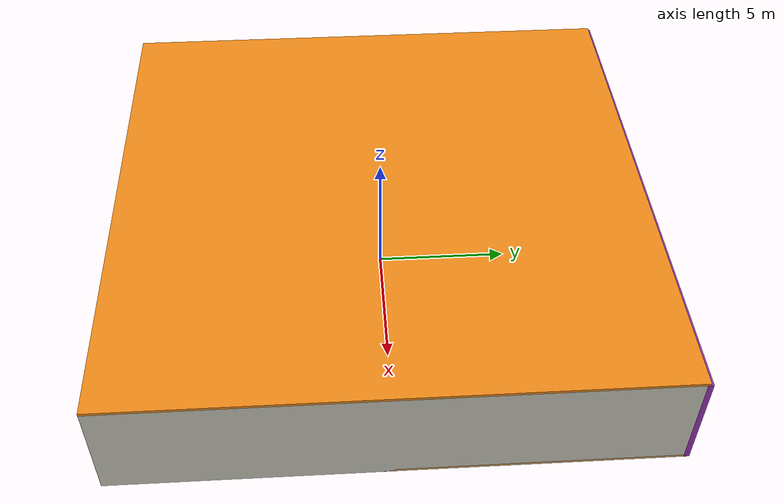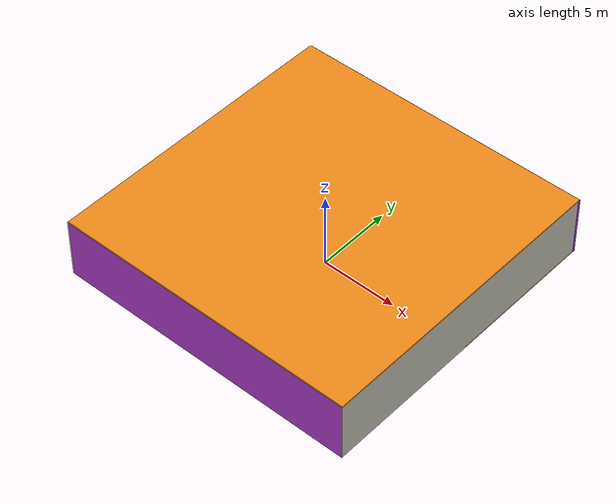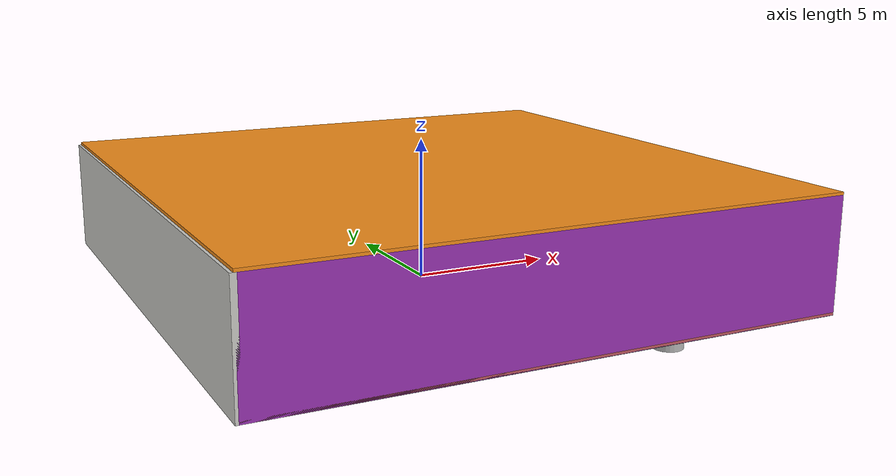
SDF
<sdf version="1.4">
 <world name="default">
  <physics type="ode">
   <max_step_size>0.001</max_step_size>
   <real_time_factor>1</real_time_factor>
   <real_time_update_rate>1000</real_time_update_rate>
   <gravity>0 0 -9.8</gravity>
  </physics>
  <scene><ambient>0.4 0.4 0.4 1</ambient><background>0.7 0.7 0.7 1</background><shadows>1</shadows></scene>
  <model name="Surrounding">
   <static>1</static>
   <link name="Ceiling">
    <collision name="Ceiling_Collision"><geometry><box><size>20 20 0.1</size></box></geometry></collision>
    <visual name="Ceiling_Visual">
     <geometry><box><size>20 20 0.1</size></box></geometry>
     <material>
      <script><uri>file://media/materials/scripts/gazebo.material</uri><name>Gazebo/Orange</name></script>
     </material>
    </visual>
    <pose>0 0 4.05 0 0 0</pose>
   </link>
   <link name="Wall_South">
    <collision name="Wall_South_Collision">
     <geometry><box><size>20 0 4</size></box></geometry>
     <pose>0 0 2 0 -0 0</pose>
    </collision>
    <visual name="Wall_South_Visual">
     <pose>0 0 2 0 -0 0</pose>
     <geometry><box><size>20 0 4</size></box></geometry>
     <material>
      <script><uri>file://media/materials/scripts/gazebo.material</uri><name>Gazebo/PurpleGlow</name></script>
     </material>
    </visual>
    <velocity_decay><linear>0</linear><angular>0</angular></velocity_decay>
    <pose>0 -10 0 0 -0 0</pose>
   </link>
   <link name="Wall_East">
    <collision name="Wall_21_Collision">
     <geometry><box><size>20 0 4</size></box></geometry>
     <pose>0 0 2 0 -0 0</pose>
    </collision>
    <visual name="Wall_21_Visual">
     <pose>0 0 2 0 -0 0</pose>
     <geometry><box><size>20 0 4</size></box></geometry>
     <material>
      <script><uri>file://media/materials/scripts/gazebo.material</uri><name>Gazebo/PaintedWall</name></script>
     </material>
    </visual>
    <velocity_decay><linear>0</linear><angular>0</angular></velocity_decay>
    <pose>10 0 0 0 -0 1.5708</pose>
   </link>
   <link name="Wall_North">
    <collision name="Wall_22_Collision">
     <geometry><box><size>20 0.2 4</size></box></geometry>
     <pose>0 0 2 0 -0 0</pose>
    </collision>
    <visual name="Wall_22_Visual">
     <pose>0 0 2 0 -0 0</pose>
     <geometry><box><size>20 0.2 4</size></box></geometry>
     <material>
      <script><uri>file://media/materials/scripts/gazebo.material</uri><name>Gazebo/PurpleGlow</name></script>
     </material>
    </visual>
    <velocity_decay><linear>0</linear><angular>0</angular></velocity_decay>
    <pose>0 10 0 0 -0 0</pose>
   </link>
   <link name="Wall_West">
    <collision name="Wall_23_Collision">
     <geometry><box><size>20 0.2 4</size></box></geometry>
     <pose>0 0 2 0 -0 0</pose>
    </collision>
    <visual name="Wall_23_Visual">
     <pose>0 0 2 0 -0 0</pose>
     <geometry><box><size>20 0.2 4</size></box></geometry>
     <material>
      <script><uri>file://media/materials/scripts/gazebo.material</uri><name>Gazebo/CeilingTiled</name></script>
     </material>
    </visual>
    <velocity_decay><linear>0</linear><angular>0</angular></velocity_decay>
    <pose>-10 0 0 0 0 -1.5708</pose>
   </link>
   <link name="Ground_link">
    <collision name="collision">
     <pose>0 0 .05 0 -0 0</pose>
     <geometry><box><size>20 20 0.1</size></box></geometry>
    </collision>
    <visual name="visual">
     <pose>0 0 .05 0 -0 0</pose>
     <geometry><box><size>20 20 0.1</size></box></geometry>
     <material>
      <script>
       <uri>file://media/materials/scripts/gazebo.material</uri>
       <name>Gazebo/OrangeTransparent</name>
      </script>
     </material>
    </visual>
   </link>
   <static>1</static>
  </model>
  <spherical_coordinates>
   <surface_model>EARTH_WGS84</surface_model>
   <latitude_deg>0</latitude_deg>
   <longitude_deg>0</longitude_deg>
   <elevation>0</elevation>
   <heading_deg>0</heading_deg>
  </spherical_coordinates>
  <light name="lightball_0" type="diffuse">
   <diffuse>0.8 0.8 0.8 1</diffuse>
   <specular>0.2 0.2 0.2 1</specular>
   <attenuation>
    <range>100</range>
    <constant>0.7</constant>
    <linear>0.01</linear>
    <quadratic>0.001</quadratic>
   </attenuation>
   <direction>-0.5 0.1 -0.9</direction>
   <pose>-2.25920871547 4.18819076571 1.66552940312 0 0 0</pose>
  </light>
  <light name="lightball_1" type="diffuse">
   <diffuse>0.8 0.8 0.8 1</diffuse>
   <specular>0.2 0.2 0.2 1</specular>
   <attenuation>
    <range>100</range>
    <constant>0.7</constant>
    <linear>0.01</linear>
    <quadratic>0.001</quadratic>
   </attenuation>
   <direction>-0.5 0.1 -0.9</direction>
   <pose>2.56124420468 -4.54156549147 1.85215885743 0 0 0</pose>
  </light>
  <light name="lightball_2" type="diffuse">
   <diffuse>0.8 0.8 0.8 1</diffuse>
   <specular>0.2 0.2 0.2 1</specular>
   <attenuation>
    <range>100</range>
    <constant>0.7</constant>
    <linear>0.01</linear>
    <quadratic>0.001</quadratic>
   </attenuation>
   <direction>-0.5 0.1 -0.9</direction>
   <pose>-9.17542648159 -4.90286760538 3.73146851039 0 0 0</pose>
  </light>
  <light name="lightball_3" type="diffuse">
   <diffuse>0.8 0.8 0.8 1</diffuse>
   <specular>0.2 0.2 0.2 1</specular>
   <attenuation>
    <range>100</range>
    <constant>0.7</constant>
    <linear>0.01</linear>
    <quadratic>0.001</quadratic>
   </attenuation>
   <direction>-0.5 0.1 -0.9</direction>
   <pose>-5.53370355881 4.30665730476 1.32650375128 0 0 0</pose>
  </light>
  <include><uri>model://cabinet</uri><pose>-7.61895746862 0.662853921374 0 0 0 2.87201552783</pose></include>
  <include><uri>model://table</uri><pose>-4.80775625181 2.09787355555 0 0 0 2.0764285282</pose></include>
  <include>
   <uri>model://robocup_3Dsim_goal</uri>
   <pose>-2.63590877855 2.03689640708 0 0 0 1.27620807435</pose>
  </include>
  <include>
   <uri>model://construction_cone</uri>
   <pose>1.62672181526 4.36329870983 0 0 0 0.0400915476224</pose>
  </include>
  <include>
   <uri>model://textured_shapes</uri>
   <pose>5.61155149119 -8.51942169566 0 0 0 1.86884498774</pose>
  </include>
  <include>
   <uri>model://robocup_3Dsim_goal</uri>
   <pose>3.91632520248 -1.67673038005 0 0 0 2.69828027468</pose>
  </include>
  <include>
   <uri>model://textured_shapes</uri>
   <pose>5.47362850997 1.80753841547 0 0 0 1.21810057678</pose>
  </include>
  <include>
   <uri>model://construction_cone</uri>
   <pose>4.5886445639 6.43654493371 0 0 0 1.80836789806</pose>
  </include>
 </world>
</sdf>

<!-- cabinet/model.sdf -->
<sdf version="1.5">
  <model name="cabinet">
    <static>true</static>
    <link name="cabinet_bottom_plate">
      <inertial>
        <pose>0 0 -1 0 0 0</pose>
        <inertia>
          <ixx>2.050000</ixx>
          <ixy>0</ixy>
          <ixz>0</ixz>
          <iyy>2.050000</iyy>
          <iyz>0</iyz>
          <izz>2.050000</izz>
        </inertia>
        <mass>25.000000</mass>
      </inertial>
      <collision name="cabinet_bottom_plate_geom">
        <pose>0 0 0.010000 0 0 0</pose>
        <geometry>
          <box>
            <size>0.450000 0.450000 0.020000</size>
          </box>
        </geometry>
      </collision>
      <visual name="cabinet_bottom_plate_geom_visual">
        <pose>0 0 0.010000 0 0 0</pose>
        <geometry>
          <box>
            <size>0.450000 0.450000 0.020000</size>
          </box>
        </geometry>
        <material>
          <script>
            <uri>model://media/materials/scripts/gazebo.material</uri>
            <name>Gazebo/Wood</name>
          </script>
        </material>
      </visual>
      <collision name="cabinet_bottom_plate_geom_cabinet_back_plate">
        <pose>0.235000 0 0.510000 0 0 0</pose>
        <geometry>
          <box>
            <size>0.020000 0.450000 1.020000</size>
          </box>
        </geometry>
      </collision>
      <visual name="cabinet_bottom_plate_geom_cabinet_back_plate_visual">
        <pose>0.235000 0 0.510000 0 0 0</pose>
        <geometry>
          <box>
            <size>0.020000 0.450000 1.020000</size>
          </box>
        </geometry>
        <material>
          <script>
            <uri>model://media/materials/scripts/gazebo.material</uri>
            <name>Gazebo/Wood</name>
          </script>
        </material>
      </visual>
      <collision name="cabinet_bottom_plate_geom_cabinet_left_plate">
        <pose>0 0.235000 0.510000 0 0 0</pose>
        <geometry>
          <box>
            <size>0.450000 0.020000 1.020000</size>
          </box>
        </geometry>
      </collision>
      <visual name="cabinet_bottom_plate_geom_cabinet_left_plate_visual">
        <pose>0 0.235000 0.510000 0 0 0</pose>
        <geometry>
          <box>
            <size>0.450000 0.020000 1.020000</size>
          </box>
        </geometry>
        <material>
          <script>
            <uri>model://media/materials/scripts/gazebo.material</uri>
            <name>Gazebo/Wood</name>
          </script>
        </material>
      </visual>
      <collision name="cabinet_bottom_plate_geom_cabinet_middle_plate">
        <pose>0 0 0.510000 0 0 0</pose>
        <geometry>
          <box>
            <size>0.450000 0.450000 0.020000</size>
          </box>
        </geometry>
      </collision>
      <visual name="cabinet_bottom_plate_geom_cabinet_middle_plate_visual">
        <pose>0 0 0.510000 0 0 0</pose>
        <geometry>
          <box>
            <size>0.450000 0.450000 0.020000</size>
          </box>
        </geometry>
        <material>
          <script>
            <uri>model://media/materials/scripts/gazebo.material</uri>
            <name>Gazebo/Wood</name>
          </script>
        </material>
      </visual>
      <collision name="cabinet_bottom_plate_geom_cabinet_right_plate">
        <pose>0 -0.235000 0.510000 0 0 0</pose>
        <geometry>
          <box>
            <size>0.450000 0.020000 1.020000</size>
          </box>
        </geometry>
      </collision>
      <visual name="cabinet_bottom_plate_geom_cabinet_right_plate_visual">
        <pose>0 -0.235000 0.510000 0 0 0</pose>
        <geometry>
          <box>
            <size>0.450000 0.020000 1.020000</size>
          </box>
        </geometry>
        <material>
          <script>
            <uri>model://media/materials/scripts/gazebo.material</uri>
            <name>Gazebo/Wood</name>
          </script>
        </material>
      </visual>
      <collision name="cabinet_bottom_plate_geom_cabinet_top_plate">
        <pose>0 0 1.010000 0 0 0</pose>
        <geometry>
          <box>
            <size>0.450000 0.450000 0.020000</size>
          </box>
        </geometry>
      </collision>
      <visual name="cabinet_bottom_plate_geom_cabinet_top_plate_visual">
        <pose>0 0 1.010000 0 0 0</pose>
        <geometry>
          <box>
            <size>0.450000 0.450000 0.020000</size>
          </box>
        </geometry>
        <material>
          <script>
            <uri>model://media/materials/scripts/gazebo.material</uri>
            <name>Gazebo/Wood</name>
          </script>
        </material>
      </visual>
    </link>
  </model>
</sdf>

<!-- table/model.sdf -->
<sdf version="1.5">
  <model name="table">
    <static>true</static>
    <link name="link">
      <collision name="surface">
        <pose>0 0 1.0 0 0 0</pose>
        <geometry>
          <box>
            <size>1.5 0.8 0.03</size>
          </box>
        </geometry>
        <surface>
          <friction>
            <ode>
              <mu>0.6</mu>
              <mu2>0.6</mu2>
            </ode>
          </friction>
        </surface>
      </collision>
      <visual name="visual1">
        <pose>0 0 1.0 0 0 0</pose>
        <geometry>
          <box>
            <size>1.5 0.8 0.03</size>
          </box>
        </geometry>
        <material>
          <script>
            <uri>model://media/materials/scripts/gazebo.material</uri>
            <name>Gazebo/Wood</name>
          </script>
        </material>
      </visual>
      <collision name="front_left_leg">
        <pose>0.68 0.38 0.5 0 0 0</pose>
        <geometry>
          <cylinder>
            <radius>0.02</radius>
            <length>1.0</length>
          </cylinder>
        </geometry>
      </collision>
      <visual name="front_left_leg">
        <pose>0.68 0.38 0.5 0 0 0</pose>
        <geometry>
          <cylinder>
            <radius>0.02</radius>
            <length>1.0</length>
          </cylinder>
        </geometry>
        <material>
          <script>
            <uri>model://media/materials/scripts/gazebo.material</uri>
            <name>Gazebo/Grey</name>
          </script>
        </material>
      </visual>
      <collision name="front_right_leg">
        <pose>0.68 -0.38 0.5 0 0 0</pose>
        <geometry>
          <cylinder>
            <radius>0.02</radius>
            <length>1.0</length>
          </cylinder>
        </geometry>
      </collision>
      <visual name="front_right_leg">
        <pose>0.68 -0.38 0.5 0 0 0</pose>
        <geometry>
          <cylinder>
            <radius>0.02</radius>
            <length>1.0</length>
          </cylinder>
        </geometry>
        <material>
          <script>
            <uri>model://media/materials/scripts/gazebo.material</uri>
            <name>Gazebo/Grey</name>
          </script>
        </material>
      </visual>
      <collision name="back_right_leg">
        <pose>-0.68 -0.38 0.5 0 0 0</pose>
        <geometry>
          <cylinder>
            <radius>0.02</radius>
            <length>1.0</length>
          </cylinder>
        </geometry>
      </collision>
      <visual name="back_right_leg">
        <pose>-0.68 -0.38 0.5 0 0 0</pose>
        <geometry>
          <cylinder>
            <radius>0.02</radius>
            <length>1.0</length>
          </cylinder>
        </geometry>
        <material>
          <script>
            <uri>model://media/materials/scripts/gazebo.material</uri>
            <name>Gazebo/Grey</name>
          </script>
        </material>
      </visual>
      <collision name="back_left_leg">
        <pose>-0.68 0.38 0.5 0 0 0</pose>
        <geometry>
          <cylinder>
            <radius>0.02</radius>
            <length>1.0</length>
          </cylinder>
        </geometry>
      </collision>
      <visual name="back_left_leg">
        <pose>-0.68 0.38 0.5 0 0 0</pose>
        <geometry>
          <cylinder>
            <radius>0.02</radius>
            <length>1.0</length>
          </cylinder>
        </geometry>
        <material>
          <script>
            <uri>model://media/materials/scripts/gazebo.material</uri>
            <name>Gazebo/Grey</name>
          </script>
        </material>
      </visual>
    </link>
  </model>
</sdf>

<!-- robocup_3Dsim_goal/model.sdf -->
<sdf version="1.5">
  <model name="robocup_3d_goal">
    <static>true</static>
    <link name="left_post">
      <pose>0 1.05 0.45 0 0 0</pose>
      <collision name="collision">
        <geometry>
          <cylinder>
            <radius>0.05</radius>
            <length>0.9</length>
          </cylinder>
        </geometry>
      </collision>
      <visual name="visual">
        <geometry>
          <cylinder>
            <radius>0.05</radius>
            <length>0.9</length>
          </cylinder>
        </geometry>
        <material>
          <script>
            <uri>file://media/materials/scripts/gazebo.material</uri>
            <name>Gazebo/ZincYellow</name>
          </script>
        </material>
      </visual>
    </link>
    <link name="left_support_horiz_lower">
      <pose>0.30 1.05 0.01 0 0 0</pose>
      <collision name="collision">
        <geometry>
          <box>
            <size>0.50 0.02 0.02</size>
          </box>
        </geometry>
      </collision>
      <visual name="visual">
        <geometry>
          <box>
            <size>0.50 0.02 0.02</size>
          </box>
        </geometry>
        <material>
          <script>
            <uri>file://media/materials/scripts/gazebo.material</uri>
            <name>Gazebo/White</name>
          </script>
        </material>
      </visual>
    </link>
    <link name="left_support_horiz_upper">
      <pose>0.30 1.05 0.79 0 0 0</pose>
      <collision name="collision">
        <geometry>
          <box>
            <size>0.50 0.02 0.02</size>
          </box>
        </geometry>
      </collision>
      <visual name="visual">
        <geometry>
          <box>
            <size>0.50 0.02 0.02</size>
          </box>
        </geometry>
        <material>
          <script>
            <uri>file://media/materials/scripts/gazebo.material</uri>
            <name>Gazebo/White</name>
          </script>
        </material>
      </visual>
    </link>
    <link name="left_support_vertical">
      <pose>0.56 1.05 0.4 0 1.5708 0</pose>
      <collision name="collision">
        <geometry>
          <box>
            <size>0.80 0.02 0.02</size>
          </box>
        </geometry>
      </collision>
      <visual name="visual">
        <geometry>
          <box>
            <size>0.80 0.02 0.02</size>
          </box>
        </geometry>
        <material>
          <script>
            <uri>file://media/materials/scripts/gazebo.material</uri>
            <name>Gazebo/White</name>
          </script>
        </material>
      </visual>
    </link>
    <link name="right_support_horiz_lower">
      <pose>0.30 -1.05 0.01 0 0 0</pose>
      <collision name="collision">
        <geometry>
          <box>
            <size>0.50 0.02 0.02</size>
          </box>
        </geometry>
      </collision>
      <visual name="visual">
        <geometry>
          <box>
            <size>0.50 0.02 0.02</size>
          </box>
        </geometry>
        <material>
          <script>
            <uri>file://media/materials/scripts/gazebo.material</uri>
            <name>Gazebo/White</name>
          </script>
        </material>
      </visual>
    </link>
    <link name="right_support_horiz_upper">
      <pose>0.30 -1.05 0.79 0 0 0</pose>
      <collision name="collision">
        <geometry>
          <box>
            <size>0.50 0.02 0.02</size>
          </box>
        </geometry>
      </collision>
      <visual name="visual">
        <geometry>
          <box>
            <size>0.50 0.02 0.02</size>
          </box>
        </geometry>
        <material>
          <script>
            <uri>file://media/materials/scripts/gazebo.material</uri>
            <name>Gazebo/White</name>
          </script>
        </material>
      </visual>
    </link>
    <link name="right_support_vertical">
      <pose>0.56 -1.05 0.4 0 1.5708 0</pose>
      <collision name="collision">
        <geometry>
          <box>
            <size>0.80 0.02 0.02</size>
          </box>
        </geometry>
      </collision>
      <visual name="visual">
        <geometry>
          <box>
            <size>0.80 0.02 0.02</size>
          </box>
        </geometry>
        <material>
          <script>
            <uri>file://media/materials/scripts/gazebo.material</uri>
            <name>Gazebo/White</name>
          </script>
        </material>
      </visual>
    </link>
    <link name="center_support_horiz_lower">
      <pose>0.56 0 0.01 0 1.5708 0</pose>
      <collision name="collision">
        <geometry>
          <box>
            <size>0.02 2.08 0.02</size>
          </box>
        </geometry>
      </collision>
      <visual name="visual">
        <geometry>
          <box>
            <size>0.02 2.08 0.02</size>
          </box>
        </geometry>
        <material>
          <script>
            <uri>file://media/materials/scripts/gazebo.material</uri>
            <name>Gazebo/White</name>
          </script>
        </material>
      </visual>
    </link>
    <link name="center_support_horiz_upper">
      <pose>0.56 0 0.79 0 1.5708 0</pose>
      <collision name="collision">
        <geometry>
          <box>
            <size>0.02 2.08 0.02</size>
          </box>
        </geometry>
      </collision>
      <visual name="visual">
        <geometry>
          <box>
            <size>0.02 2.08 0.02</size>
          </box>
        </geometry>
        <material>
          <script>
            <uri>file://media/materials/scripts/gazebo.material</uri>
            <name>Gazebo/White</name>
          </script>
        </material>
      </visual>
    </link>
    <link name="right_post">
      <pose>0 -1.05 0.45 0 0 0</pose>
      <collision name="collision">
        <geometry>
          <cylinder>
            <radius>0.05</radius>
            <length>0.9</length>
          </cylinder>
        </geometry>
      </collision>
      <visual name="visual">
        <geometry>
          <cylinder>
            <radius>0.05</radius>
            <length>0.9</length>
          </cylinder>
        </geometry>
        <material>
          <script>
            <uri>file://media/materials/scripts/gazebo.material</uri>
            <name>Gazebo/ZincYellow</name>
          </script>
        </material>
      </visual>
    </link>
    <link name="crossbar">
      <pose>0 0 0.85 1.57 1.57 0</pose>
      <collision name="collision">
        <geometry>
          <cylinder>
            <radius>0.05</radius>
            <length>2.0</length>
          </cylinder>
        </geometry>
      </collision>
      <visual name="visual">
        <geometry>
          <cylinder>
            <radius>0.05</radius>
            <length>2.0</length>
          </cylinder>
        </geometry>
        <material>
          <script>
            <uri>file://media/materials/scripts/gazebo.material</uri>
            <name>Gazebo/ZincYellow</name>
          </script>
        </material>
      </visual>
    </link>
    <link name="center_net">
      <pose>0.56 0 0.40 0 0 0</pose>
      <collision name="collision">
        <geometry>
          <box>
            <size>0.01 2.1 0.80</size>
          </box>
        </geometry>
      </collision>
      <visual name="visual">
        <geometry>
          <box>
            <size>0.01 2.1 0.80</size>
          </box>
        </geometry>
        <material>
          <script>
            <uri>model://../model_source/models/robocup09_spl_field/materials/scripts/</uri>
            <uri>model://../model_source/models/robocup09_spl_field/materials/textures/</uri>
            <name>RoboCup/Net</name>
          </script>
        </material>
      </visual>
    </link>
    <link name="left_net">
      <pose>0.30 1.05 0.40 0 0 0</pose>
      <collision name="collision">
        <geometry>
          <box>
            <size>0.50 0.01 0.76</size>
          </box>
        </geometry>
      </collision>
      <visual name="visual">
        <geometry>
          <box>
            <size>0.50 0.01 0.76</size>
          </box>
        </geometry>
        <material>
          <script>
            <uri>model://../model_source/models/robocup09_spl_field/materials/scripts/</uri>
            <uri>model://../model_source/models/robocup09_spl_field/materials/textures/</uri>
            <name>RoboCup/Net</name>
          </script>
        </material>
      </visual>
    </link>
    <link name="right_net">
      <pose>0.30 -1.05 0.40 0 0 0</pose>
      <collision name="collision">
        <geometry>
          <box>
            <size>0.50 0.01 0.76</size>
          </box>
        </geometry>
      </collision>
      <visual name="visual">
        <geometry>
          <box>
            <size>0.50 0.01 0.76</size>
          </box>
        </geometry>
        <material>
          <script>
            <uri>model://../model_source/models/robocup09_spl_field/materials/scripts/</uri>
            <uri>model://../model_source/models/robocup09_spl_field/materials/textures/</uri>
            <name>RoboCup/Net</name>
          </script>
        </material>
      </visual>
    </link>
  </model>
</sdf>

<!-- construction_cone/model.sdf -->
<sdf version="1.5">
  <model name="Construction Cone">
    <link name="link">
      <collision name="collision">
        <geometry>
          <mesh>
            <scale>10 10 10</scale>
            <uri>file://isr-testbed/construction_cone/meshes/construction_cone.dae</uri>
          </mesh>
        </geometry>
      </collision>
      <visual name="visual">
        <geometry>
          <mesh>
            <scale>10 10 10</scale>
            <uri>file://isr-testbed/construction_cone/meshes/construction_cone.dae</uri>
          </mesh>
        </geometry>
      </visual>
    </link>
  </model>
</sdf>

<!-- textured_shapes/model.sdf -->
<sdf version="1.6">
  <model name="textured_shapes">
    <pose>0 0 0.5 0 0 0</pose>
    <link name="box">
      <pose>0 -1.5 0 0 0 0</pose>
      <collision name="collision">
        <geometry>
          <box>
            <size>1 1 1</size>
          </box>
        </geometry>
      </collision>
      <visual name="visual">
        <geometry>
          <box>
            <size>1 1 1</size>
          </box>
        </geometry>
        <material>
          <script>
            <uri>model://../model_source/models/textured_shapes/materials/scripts</uri>
            <uri>model://../model_source/models/textured_shapes/materials/textures</uri>
            <name>TexturedShape/Squares</name>
          </script>
        </material>
      </visual>
    </link>
    <link name="sphere">
      <collision name="collision">
        <geometry>
          <sphere>
            <radius>0.5</radius>
          </sphere>
        </geometry>
      </collision>
      <visual name="visual">
        <geometry>
          <sphere>
            <radius>0.5</radius>
          </sphere>
        </geometry>
        <material>
          <script>
            <uri>model://../model_source/models/textured_shapes/materials/scripts</uri>
            <uri>model://../model_source/models/textured_shapes/materials/textures</uri>
            <name>TexturedShape/Squares</name>
          </script>
        </material>
      </visual>
    </link>
    <link name="cylinder">
      <pose>0 1.5 0 0 0 0</pose>
      <collision name="collision">
        <geometry>
          <cylinder>
            <radius>0.5</radius>
            <length>1</length>
          </cylinder>
        </geometry>
      </collision>
      <visual name="visual">
        <geometry>
          <cylinder>
            <radius>0.5</radius>
            <length>1</length>
          </cylinder>
        </geometry>
        <material>
          <script>
            <uri>model://../model_source/models/textured_shapes/materials/scripts</uri>
            <uri>model://../model_source/models/textured_shapes/materials/textures</uri>
            <name>TexturedShape/Squares</name>
          </script>
        </material>
      </visual>
    </link>
  </model>
</sdf>
